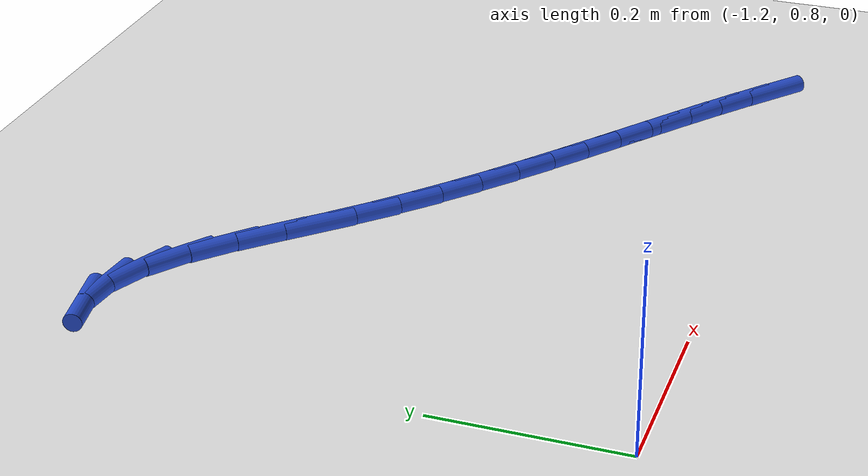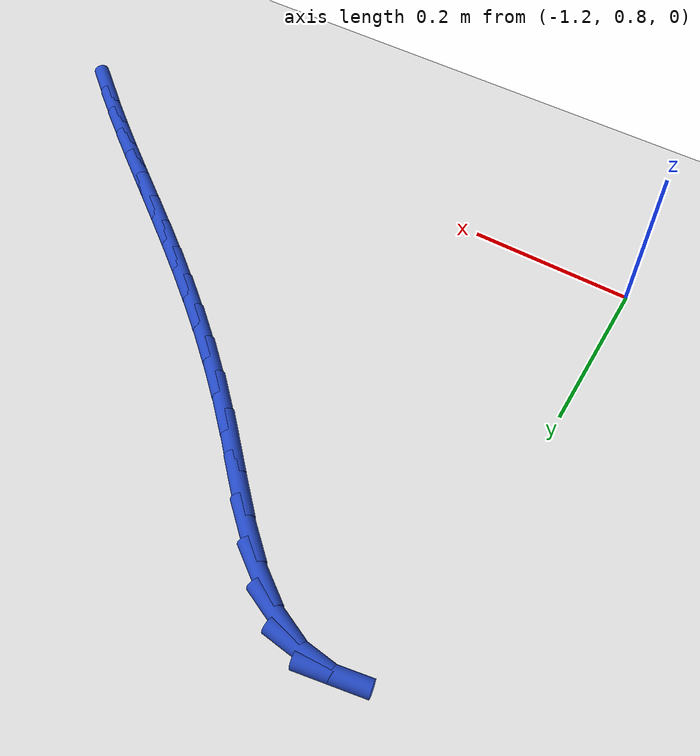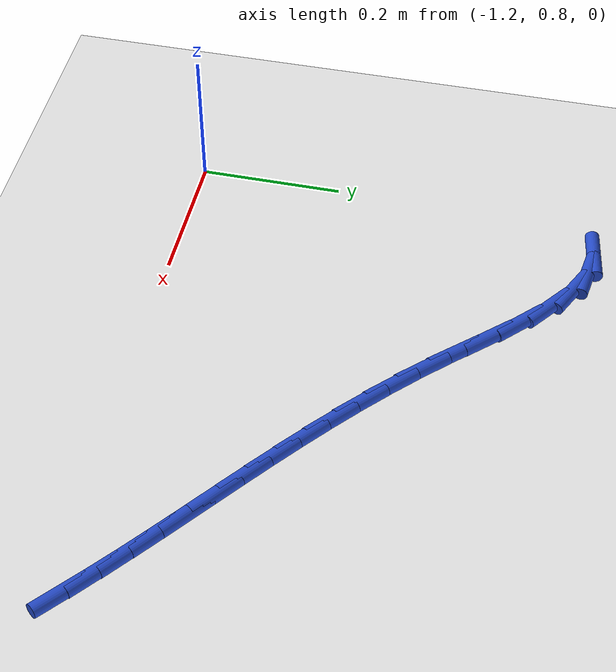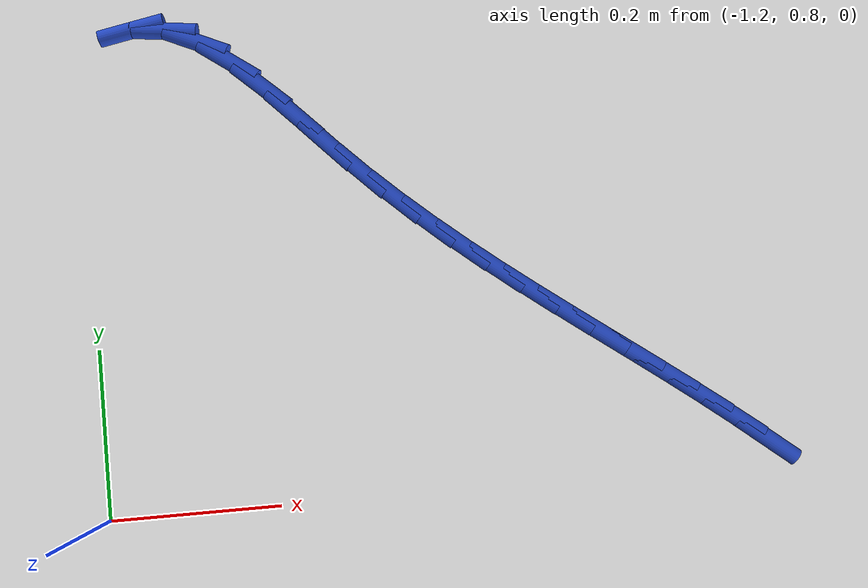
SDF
<sdf version="1.6">
 <world name="default">
  <model name="ground_plane">
   <static>1</static>
   <link name="link">
    <collision name="collision">
     <geometry><plane><normal>0 0 1</normal><size>100 100</size></plane></geometry>
     <surface><friction><ode><mu>100</mu><mu2>50</mu2></ode></friction></surface>
    </collision>
    <visual name="visual">
     <cast_shadows>0</cast_shadows>
     <geometry><plane><normal>0 0 1</normal><size>100 100</size></plane></geometry>
     <material>
      <script><uri>file://media/materials/scripts/gazebo.material</uri><name>Gazebo/WhiteGlow</name></script>
     </material>
    </visual>
   </link>
  </model>
  <model name="line">
   <link name="link_20">
    <pose>-0.42679973112854386 0.8282871311962707 0.01 0 1.57 -0.6883064348828172</pose>
    <collision name="collision">
     <geometry><cylinder><radius>0.01</radius><length>0.08</length></cylinder></geometry>
    </collision>
    <visual name="visual">
     <material>
      <script><name>Gazebo/Blue</name><uri>file://media/materials/scripts/gazebo.material</uri></script>
     </material>
     <geometry><cylinder><radius>0.01</radius><length>0.08</length></cylinder></geometry>
    </visual>
   </link>
   <link name="link_21">
    <pose>-0.4629815781682702 0.858046443112251 0.01 0 1.57 -0.6676496734134616</pose>
    <collision name="collision">
     <geometry><cylinder><radius>0.01</radius><length>0.08</length></cylinder></geometry>
    </collision>
    <visual name="visual">
     <material>
      <script><name>Gazebo/Blue</name><uri>file://media/materials/scripts/gazebo.material</uri></script>
     </material>
     <geometry><cylinder><radius>0.01</radius><length>0.08</length></cylinder></geometry>
    </visual>
   </link>
   <link name="link_22">
    <pose>-0.49953839362850516 0.8868691425811355 0.01 0 1.57 -0.6522695162933421</pose>
    <collision name="collision">
     <geometry><cylinder><radius>0.01</radius><length>0.08</length></cylinder></geometry>
    </collision>
    <visual name="visual">
     <material>
      <script><name>Gazebo/Blue</name><uri>file://media/materials/scripts/gazebo.material</uri></script>
     </material>
     <geometry><cylinder><radius>0.01</radius><length>0.08</length></cylinder></geometry>
    </visual>
   </link>
   <link name="link_23">
    <pose>-0.5364140265312488 0.9150344445018078 0.01 0 1.57 -0.6423523197538931</pose>
    <collision name="collision">
     <geometry><cylinder><radius>0.01</radius><length>0.08</length></cylinder></geometry>
    </collision>
    <visual name="visual">
     <material>
      <script><name>Gazebo/Blue</name><uri>file://media/materials/scripts/gazebo.material</uri></script>
     </material>
     <geometry><cylinder><radius>0.01</radius><length>0.08</length></cylinder></geometry>
    </visual>
   </link>
   <link name="link_24">
    <pose>-0.5735523258985015 0.9428215637731512 0.01 0 1.57 -0.6379865458825893</pose>
    <collision name="collision">
     <geometry><cylinder><radius>0.01</radius><length>0.08</length></cylinder></geometry>
    </collision>
    <visual name="visual">
     <material>
      <script><name>Gazebo/Blue</name><uri>file://media/materials/scripts/gazebo.material</uri></script>
     </material>
     <geometry><cylinder><radius>0.01</radius><length>0.08</length></cylinder></geometry>
    </visual>
   </link>
   <link name="link_25">
    <pose>-0.6108971407522635 0.9705097152940492 0.01 0 1.57 -0.6391689251276169</pose>
    <collision name="collision">
     <geometry><cylinder><radius>0.01</radius><length>0.08</length></cylinder></geometry>
    </collision>
    <visual name="visual">
     <material>
      <script><name>Gazebo/Blue</name><uri>file://media/materials/scripts/gazebo.material</uri></script>
     </material>
     <geometry><cylinder><radius>0.01</radius><length>0.08</length></cylinder></geometry>
    </visual>
   </link>
   <link name="link_26">
    <pose>-0.6483923201145351 0.9983781139633847 0.01 0 1.57 -0.6458095160340973</pose>
    <collision name="collision">
     <geometry><cylinder><radius>0.01</radius><length>0.08</length></cylinder></geometry>
    </collision>
    <visual name="visual">
     <material>
      <script><name>Gazebo/Blue</name><uri>file://media/materials/scripts/gazebo.material</uri></script>
     </material>
     <geometry><cylinder><radius>0.01</radius><length>0.08</length></cylinder></geometry>
    </visual>
   </link>
   <link name="link_27">
    <pose>-0.6859817130073167 1.0267059746800418 0.01 0 1.57 -0.657735107498253</pose>
    <collision name="collision">
     <geometry><cylinder><radius>0.01</radius><length>0.08</length></cylinder></geometry>
    </collision>
    <visual name="visual">
     <material>
      <script><name>Gazebo/Blue</name><uri>file://media/materials/scripts/gazebo.material</uri></script>
     </material>
     <geometry><cylinder><radius>0.01</radius><length>0.08</length></cylinder></geometry>
    </visual>
   </link>
   <link name="link_28">
    <pose>-0.7236091684526085 1.0557725123429034 0.01 0 1.57 -0.6746912622402574</pose>
    <collision name="collision">
     <geometry><cylinder><radius>0.01</radius><length>0.08</length></cylinder></geometry>
    </collision>
    <visual name="visual">
     <material>
      <script><name>Gazebo/Blue</name><uri>file://media/materials/scripts/gazebo.material</uri></script>
     </material>
     <geometry><cylinder><radius>0.01</radius><length>0.08</length></cylinder></geometry>
    </visual>
   </link>
   <link name="link_29">
    <pose>-0.7612185354724107 1.085856941850853 0.01 0 1.57 -0.6963440058009722</pose>
    <collision name="collision">
     <geometry><cylinder><radius>0.01</radius><length>0.08</length></cylinder></geometry>
    </collision>
    <visual name="visual">
     <material>
      <script><name>Gazebo/Blue</name><uri>file://media/materials/scripts/gazebo.material</uri></script>
     </material>
     <geometry><cylinder><radius>0.01</radius><length>0.08</length></cylinder></geometry>
    </visual>
   </link>
   <link name="link_30">
    <pose>-0.7987536630887233 1.1172384781027738 0.01 0 1.57 -0.722282626750278</pose>
    <collision name="collision">
     <geometry><cylinder><radius>0.01</radius><length>0.08</length></cylinder></geometry>
    </collision>
    <visual name="visual">
     <material>
      <script><name>Gazebo/Blue</name><uri>file://media/materials/scripts/gazebo.material</uri></script>
     </material>
     <geometry><cylinder><radius>0.01</radius><length>0.08</length></cylinder></geometry>
    </visual>
   </link>
   <link name="link_31">
    <pose>-0.8361584003235474 1.1501963359975493 0.01 0 1.57 -0.7520251866921546</pose>
    <collision name="collision">
     <geometry><cylinder><radius>0.01</radius><length>0.08</length></cylinder></geometry>
    </collision>
    <visual name="visual">
     <material>
      <script><name>Gazebo/Blue</name><uri>file://media/materials/scripts/gazebo.material</uri></script>
     </material>
     <geometry><cylinder><radius>0.01</radius><length>0.08</length></cylinder></geometry>
    </visual>
   </link>
   <link name="link_32">
    <pose>-0.8733765961988829 1.185009730434063 0.01 0 1.57 -0.7850167899247315</pose>
    <collision name="collision">
     <geometry><cylinder><radius>0.01</radius><length>0.08</length></cylinder></geometry>
    </collision>
    <visual name="visual">
     <material>
      <script><name>Gazebo/Blue</name><uri>file://media/materials/scripts/gazebo.material</uri></script>
     </material>
     <geometry><cylinder><radius>0.01</radius><length>0.08</length></cylinder></geometry>
    </visual>
   </link>
   <link name="link_33">
    <pose>-0.9103521577971397 1.2219570997860632 0.01 0 1.57 -0.8103170245100896</pose>
    <collision name="collision">
     <geometry><cylinder><radius>0.01</radius><length>0.08</length></cylinder></geometry>
    </collision>
    <visual name="visual">
     <material>
      <script><name>Gazebo/Blue</name><uri>file://media/materials/scripts/gazebo.material</uri></script>
     </material>
     <geometry><cylinder><radius>0.01</radius><length>0.08</length></cylinder></geometry>
    </visual>
   </link>
   <link name="link_34">
    <pose>-0.9470850002560282 1.260567806382027 0.01 0 1.57 -0.7989413287640867</pose>
    <collision name="collision">
     <geometry><cylinder><radius>0.01</radius><length>0.08</length></cylinder></geometry>
    </collision>
    <visual name="visual">
     <material>
      <script><name>Gazebo/Blue</name><uri>file://media/materials/scripts/gazebo.material</uri></script>
     </material>
     <geometry><cylinder><radius>0.01</radius><length>0.08</length></cylinder></geometry>
    </visual>
   </link>
   <link name="link_35">
    <pose>-0.9837355283522464 1.298224754448264 0.01 0 1.57 -0.7420945817457969</pose>
    <collision name="collision">
     <geometry><cylinder><radius>0.01</radius><length>0.08</length></cylinder></geometry>
    </collision>
    <visual name="visual">
     <material>
      <script><name>Gazebo/Blue</name><uri>file://media/materials/scripts/gazebo.material</uri></script>
     </material>
     <geometry><cylinder><radius>0.01</radius><length>0.08</length></cylinder></geometry>
    </visual>
   </link>
   <link name="link_36">
    <pose>-1.0204927120035454 1.3319288056142253 0.01 0 1.57 -0.6253369880694639</pose>
    <collision name="collision">
     <geometry><cylinder><radius>0.01</radius><length>0.08</length></cylinder></geometry>
    </collision>
    <visual name="visual">
     <material>
      <script><name>Gazebo/Blue</name><uri>file://media/materials/scripts/gazebo.material</uri></script>
     </material>
     <geometry><cylinder><radius>0.01</radius><length>0.08</length></cylinder></geometry>
    </visual>
   </link>
   <link name="link_37">
    <pose>-1.0575455211276743 1.3586808215093604 0.01 0 1.57 -0.42083631800951915</pose>
    <collision name="collision">
     <geometry><cylinder><radius>0.01</radius><length>0.08</length></cylinder></geometry>
    </collision>
    <visual name="visual">
     <material>
      <script><name>Gazebo/Blue</name><uri>file://media/materials/scripts/gazebo.material</uri></script>
     </material>
     <geometry><cylinder><radius>0.01</radius><length>0.08</length></cylinder></geometry>
    </visual>
   </link>
   <link name="link_38">
    <pose>-1.095082925642384 1.3754816637631182 0.01 0 1.57 -0.11529514805836497</pose>
    <collision name="collision">
     <geometry><cylinder><radius>0.01</radius><length>0.08</length></cylinder></geometry>
    </collision>
    <visual name="visual">
     <material>
      <script><name>Gazebo/Blue</name><uri>file://media/materials/scripts/gazebo.material</uri></script>
     </material>
     <geometry><cylinder><radius>0.01</radius><length>0.08</length></cylinder></geometry>
    </visual>
   </link>
   <link name="link_39">
    <pose>-1.1332672386760871 1.3799037413575044 0.01 0 1.57 0.18537166887914516</pose>
    <collision name="collision">
     <geometry><cylinder><radius>0.01</radius><length>0.08</length></cylinder></geometry>
    </collision>
    <visual name="visual">
     <material>
      <script><name>Gazebo/Blue</name><uri>file://media/materials/scripts/gazebo.material</uri></script>
     </material>
     <geometry><cylinder><radius>0.01</radius><length>0.08</length></cylinder></geometry>
    </visual>
   </link>
  </model>
 </world>
</sdf>
